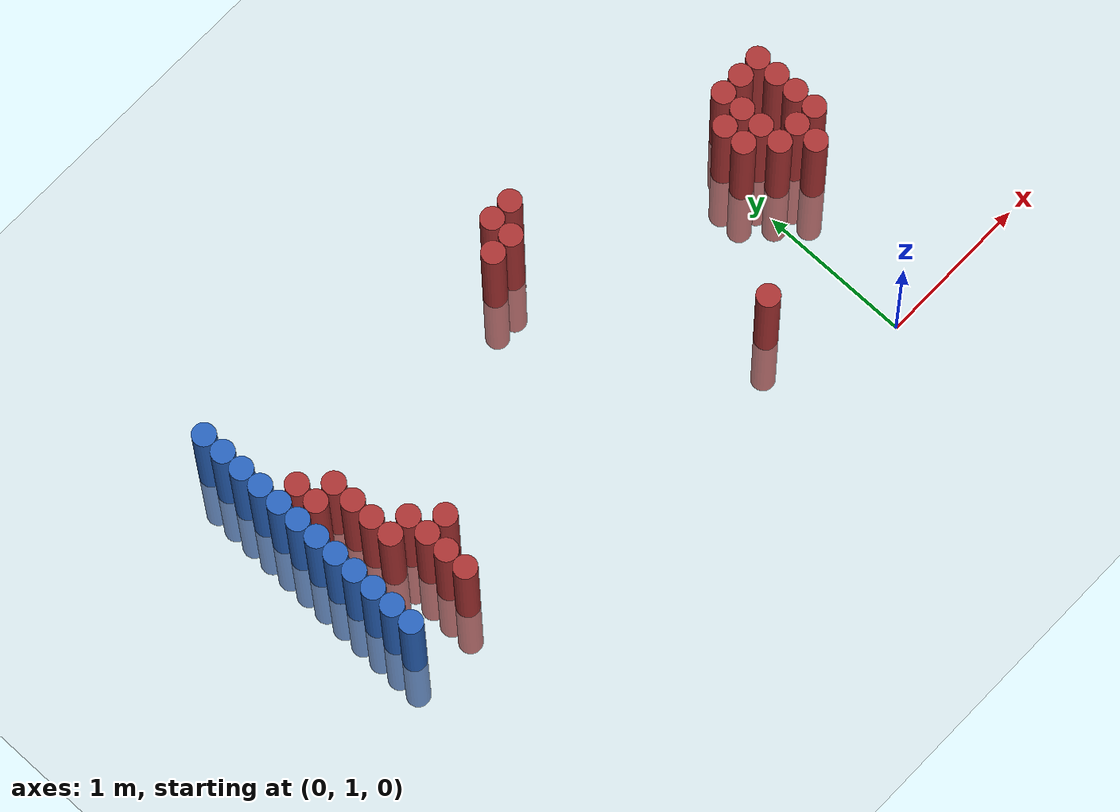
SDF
<sdf version="1.6">
 <world name="default">
  <model name="ground_plane">
   <static>1</static>
   <link name="link">
    <collision name="collision">
     <geometry><plane><normal>0 0 1</normal><size>100 100</size></plane></geometry>
     <surface><friction><ode><mu>100</mu><mu2>50</mu2></ode></friction></surface>
    </collision>
    <visual name="visual">
     <cast_shadows>0</cast_shadows>
     <geometry><plane><normal>0 0 1</normal><size>100 100</size></plane></geometry>
     <material>
      <script><uri>file://media/materials/scripts/gazebo.material</uri><name>Gazebo/Grey</name></script>
     </material>
    </visual>
   </link>
  </model>
  <model name="unit_cylinder_137">
   <static>1</static>
   <pose>-3.425000 1.675000 0.000000 0.000000 0.000000 0.000000</pose>
   <link name="link">
    <inertial>
     <mass>1</mass>
     <inertia><ixx>0.145833</ixx><ixy>0</ixy><ixz>0</ixz><iyy>0.145833</iyy><iyz>0</iyz><izz>0.125</izz></inertia>
    </inertial>
    <collision name="collision">
     <geometry><cylinder><radius>0.075000</radius><length>1.5</length></cylinder></geometry>
    </collision>
    <visual name="visual">
     <geometry><cylinder><radius>0.075000</radius><length>1.5</length></cylinder></geometry>
     <material>
      <ambient>0.152000 0.379000 0.720000 1</ambient>
      <diffuse>0.152000 0.379000 0.720000 1</diffuse>
     </material>
     <material>
      <script><name>Gazebo/Grey</name><uri>file://media/materials/scripts/gazebo.material</uri></script>
     </material>
    </visual>
   </link>
  </model>
  <model name="unit_cylinder_139">
   <static>1</static>
   <pose>-3.425000 1.825000 0.000000 0.000000 0.000000 0.000000</pose>
   <link name="link">
    <inertial>
     <mass>1</mass>
     <inertia><ixx>0.145833</ixx><ixy>0</ixy><ixz>0</ixz><iyy>0.145833</iyy><iyz>0</iyz><izz>0.125</izz></inertia>
    </inertial>
    <collision name="collision">
     <geometry><cylinder><radius>0.075000</radius><length>1.5</length></cylinder></geometry>
    </collision>
    <visual name="visual">
     <geometry><cylinder><radius>0.075000</radius><length>1.5</length></cylinder></geometry>
     <material>
      <ambient>0.152000 0.379000 0.720000 1</ambient>
      <diffuse>0.152000 0.379000 0.720000 1</diffuse>
     </material>
     <material>
      <script><name>Gazebo/Grey</name><uri>file://media/materials/scripts/gazebo.material</uri></script>
     </material>
    </visual>
   </link>
  </model>
  <model name="unit_cylinder_141">
   <static>1</static>
   <pose>-3.425000 1.975000 0.000000 0.000000 0.000000 0.000000</pose>
   <link name="link">
    <inertial>
     <mass>1</mass>
     <inertia><ixx>0.145833</ixx><ixy>0</ixy><ixz>0</ixz><iyy>0.145833</iyy><iyz>0</iyz><izz>0.125</izz></inertia>
    </inertial>
    <collision name="collision">
     <geometry><cylinder><radius>0.075000</radius><length>1.5</length></cylinder></geometry>
    </collision>
    <visual name="visual">
     <geometry><cylinder><radius>0.075000</radius><length>1.5</length></cylinder></geometry>
     <material>
      <ambient>0.152000 0.379000 0.720000 1</ambient>
      <diffuse>0.152000 0.379000 0.720000 1</diffuse>
     </material>
     <material>
      <script><name>Gazebo/Grey</name><uri>file://media/materials/scripts/gazebo.material</uri></script>
     </material>
    </visual>
   </link>
  </model>
  <model name="unit_cylinder_143">
   <static>1</static>
   <pose>-3.425000 2.125000 0.000000 0.000000 0.000000 0.000000</pose>
   <link name="link">
    <inertial>
     <mass>1</mass>
     <inertia><ixx>0.145833</ixx><ixy>0</ixy><ixz>0</ixz><iyy>0.145833</iyy><iyz>0</iyz><izz>0.125</izz></inertia>
    </inertial>
    <collision name="collision">
     <geometry><cylinder><radius>0.075000</radius><length>1.5</length></cylinder></geometry>
    </collision>
    <visual name="visual">
     <geometry><cylinder><radius>0.075000</radius><length>1.5</length></cylinder></geometry>
     <material>
      <ambient>0.152000 0.379000 0.720000 1</ambient>
      <diffuse>0.152000 0.379000 0.720000 1</diffuse>
     </material>
     <material>
      <script><name>Gazebo/Grey</name><uri>file://media/materials/scripts/gazebo.material</uri></script>
     </material>
    </visual>
   </link>
  </model>
  <model name="unit_cylinder_145">
   <static>1</static>
   <pose>-3.425000 2.275000 0.000000 0.000000 0.000000 0.000000</pose>
   <link name="link">
    <inertial>
     <mass>1</mass>
     <inertia><ixx>0.145833</ixx><ixy>0</ixy><ixz>0</ixz><iyy>0.145833</iyy><iyz>0</iyz><izz>0.125</izz></inertia>
    </inertial>
    <collision name="collision">
     <geometry><cylinder><radius>0.075000</radius><length>1.5</length></cylinder></geometry>
    </collision>
    <visual name="visual">
     <geometry><cylinder><radius>0.075000</radius><length>1.5</length></cylinder></geometry>
     <material>
      <ambient>0.152000 0.379000 0.720000 1</ambient>
      <diffuse>0.152000 0.379000 0.720000 1</diffuse>
     </material>
     <material>
      <script><name>Gazebo/Grey</name><uri>file://media/materials/scripts/gazebo.material</uri></script>
     </material>
    </visual>
   </link>
  </model>
  <model name="unit_cylinder_147">
   <static>1</static>
   <pose>-3.425000 2.425000 0.000000 0.000000 0.000000 0.000000</pose>
   <link name="link">
    <inertial>
     <mass>1</mass>
     <inertia><ixx>0.145833</ixx><ixy>0</ixy><ixz>0</ixz><iyy>0.145833</iyy><iyz>0</iyz><izz>0.125</izz></inertia>
    </inertial>
    <collision name="collision">
     <geometry><cylinder><radius>0.075000</radius><length>1.5</length></cylinder></geometry>
    </collision>
    <visual name="visual">
     <geometry><cylinder><radius>0.075000</radius><length>1.5</length></cylinder></geometry>
     <material>
      <ambient>0.152000 0.379000 0.720000 1</ambient>
      <diffuse>0.152000 0.379000 0.720000 1</diffuse>
     </material>
     <material>
      <script><name>Gazebo/Grey</name><uri>file://media/materials/scripts/gazebo.material</uri></script>
     </material>
    </visual>
   </link>
  </model>
  <model name="unit_cylinder_149">
   <static>1</static>
   <pose>-3.425000 2.575000 0.000000 0.000000 0.000000 0.000000</pose>
   <link name="link">
    <inertial>
     <mass>1</mass>
     <inertia><ixx>0.145833</ixx><ixy>0</ixy><ixz>0</ixz><iyy>0.145833</iyy><iyz>0</iyz><izz>0.125</izz></inertia>
    </inertial>
    <collision name="collision">
     <geometry><cylinder><radius>0.075000</radius><length>1.5</length></cylinder></geometry>
    </collision>
    <visual name="visual">
     <geometry><cylinder><radius>0.075000</radius><length>1.5</length></cylinder></geometry>
     <material>
      <ambient>0.152000 0.379000 0.720000 1</ambient>
      <diffuse>0.152000 0.379000 0.720000 1</diffuse>
     </material>
     <material>
      <script><name>Gazebo/Grey</name><uri>file://media/materials/scripts/gazebo.material</uri></script>
     </material>
    </visual>
   </link>
  </model>
  <model name="unit_cylinder_151">
   <static>1</static>
   <pose>-3.425000 2.725000 0.000000 0.000000 0.000000 0.000000</pose>
   <link name="link">
    <inertial>
     <mass>1</mass>
     <inertia><ixx>0.145833</ixx><ixy>0</ixy><ixz>0</ixz><iyy>0.145833</iyy><iyz>0</iyz><izz>0.125</izz></inertia>
    </inertial>
    <collision name="collision">
     <geometry><cylinder><radius>0.075000</radius><length>1.5</length></cylinder></geometry>
    </collision>
    <visual name="visual">
     <geometry><cylinder><radius>0.075000</radius><length>1.5</length></cylinder></geometry>
     <material>
      <ambient>0.152000 0.379000 0.720000 1</ambient>
      <diffuse>0.152000 0.379000 0.720000 1</diffuse>
     </material>
     <material>
      <script><name>Gazebo/Grey</name><uri>file://media/materials/scripts/gazebo.material</uri></script>
     </material>
    </visual>
   </link>
  </model>
  <model name="unit_cylinder_153">
   <static>1</static>
   <pose>-3.425000 2.875000 0.000000 0.000000 0.000000 0.000000</pose>
   <link name="link">
    <inertial>
     <mass>1</mass>
     <inertia><ixx>0.145833</ixx><ixy>0</ixy><ixz>0</ixz><iyy>0.145833</iyy><iyz>0</iyz><izz>0.125</izz></inertia>
    </inertial>
    <collision name="collision">
     <geometry><cylinder><radius>0.075000</radius><length>1.5</length></cylinder></geometry>
    </collision>
    <visual name="visual">
     <geometry><cylinder><radius>0.075000</radius><length>1.5</length></cylinder></geometry>
     <material>
      <ambient>0.152000 0.379000 0.720000 1</ambient>
      <diffuse>0.152000 0.379000 0.720000 1</diffuse>
     </material>
     <material>
      <script><name>Gazebo/Grey</name><uri>file://media/materials/scripts/gazebo.material</uri></script>
     </material>
    </visual>
   </link>
  </model>
  <model name="unit_cylinder_155">
   <static>1</static>
   <pose>-3.425000 3.025000 0.000000 0.000000 0.000000 0.000000</pose>
   <link name="link">
    <inertial>
     <mass>1</mass>
     <inertia><ixx>0.145833</ixx><ixy>0</ixy><ixz>0</ixz><iyy>0.145833</iyy><iyz>0</iyz><izz>0.125</izz></inertia>
    </inertial>
    <collision name="collision">
     <geometry><cylinder><radius>0.075000</radius><length>1.5</length></cylinder></geometry>
    </collision>
    <visual name="visual">
     <geometry><cylinder><radius>0.075000</radius><length>1.5</length></cylinder></geometry>
     <material>
      <ambient>0.152000 0.379000 0.720000 1</ambient>
      <diffuse>0.152000 0.379000 0.720000 1</diffuse>
     </material>
     <material>
      <script><name>Gazebo/Grey</name><uri>file://media/materials/scripts/gazebo.material</uri></script>
     </material>
    </visual>
   </link>
  </model>
  <model name="unit_cylinder_157">
   <static>1</static>
   <pose>-3.425000 3.175000 0.000000 0.000000 0.000000 0.000000</pose>
   <link name="link">
    <inertial>
     <mass>1</mass>
     <inertia><ixx>0.145833</ixx><ixy>0</ixy><ixz>0</ixz><iyy>0.145833</iyy><iyz>0</iyz><izz>0.125</izz></inertia>
    </inertial>
    <collision name="collision">
     <geometry><cylinder><radius>0.075000</radius><length>1.5</length></cylinder></geometry>
    </collision>
    <visual name="visual">
     <geometry><cylinder><radius>0.075000</radius><length>1.5</length></cylinder></geometry>
     <material>
      <ambient>0.152000 0.379000 0.720000 1</ambient>
      <diffuse>0.152000 0.379000 0.720000 1</diffuse>
     </material>
     <material>
      <script><name>Gazebo/Grey</name><uri>file://media/materials/scripts/gazebo.material</uri></script>
     </material>
    </visual>
   </link>
  </model>
  <model name="unit_cylinder_159">
   <static>1</static>
   <pose>-3.425000 3.325000 0.000000 0.000000 0.000000 0.000000</pose>
   <link name="link">
    <inertial>
     <mass>1</mass>
     <inertia><ixx>0.145833</ixx><ixy>0</ixy><ixz>0</ixz><iyy>0.145833</iyy><iyz>0</iyz><izz>0.125</izz></inertia>
    </inertial>
    <collision name="collision">
     <geometry><cylinder><radius>0.075000</radius><length>1.5</length></cylinder></geometry>
    </collision>
    <visual name="visual">
     <geometry><cylinder><radius>0.075000</radius><length>1.5</length></cylinder></geometry>
     <material>
      <ambient>0.152000 0.379000 0.720000 1</ambient>
      <diffuse>0.152000 0.379000 0.720000 1</diffuse>
     </material>
     <material>
      <script><name>Gazebo/Grey</name><uri>file://media/materials/scripts/gazebo.material</uri></script>
     </material>
    </visual>
   </link>
  </model>
  <model name="unit_cylinder_232">
   <static>1</static>
   <pose>-3.425000 1.675000 0.000000 0.000000 0.000000 0.000000</pose>
   <link name="link">
    <inertial>
     <mass>1</mass>
     <inertia><ixx>0.145833</ixx><ixy>0</ixy><ixz>0</ixz><iyy>0.145833</iyy><iyz>0</iyz><izz>0.125</izz></inertia>
    </inertial>
    <collision name="collision">
     <geometry><cylinder><radius>0.075000</radius><length>1.5</length></cylinder></geometry>
    </collision>
    <visual name="visual">
     <geometry><cylinder><radius>0.075000</radius><length>1.5</length></cylinder></geometry>
     <material>
      <ambient>0.152000 0.379000 0.720000 1</ambient>
      <diffuse>0.152000 0.379000 0.720000 1</diffuse>
     </material>
     <material>
      <script><name>Gazebo/Grey</name><uri>file://media/materials/scripts/gazebo.material</uri></script>
     </material>
    </visual>
   </link>
  </model>
  <model name="unit_cylinder_233">
   <static>1</static>
   <pose>-3.425000 1.825000 0.000000 0.000000 0.000000 0.000000</pose>
   <link name="link">
    <inertial>
     <mass>1</mass>
     <inertia><ixx>0.145833</ixx><ixy>0</ixy><ixz>0</ixz><iyy>0.145833</iyy><iyz>0</iyz><izz>0.125</izz></inertia>
    </inertial>
    <collision name="collision">
     <geometry><cylinder><radius>0.075000</radius><length>1.5</length></cylinder></geometry>
    </collision>
    <visual name="visual">
     <geometry><cylinder><radius>0.075000</radius><length>1.5</length></cylinder></geometry>
     <material>
      <ambient>0.152000 0.379000 0.720000 1</ambient>
      <diffuse>0.152000 0.379000 0.720000 1</diffuse>
     </material>
     <material>
      <script><name>Gazebo/Grey</name><uri>file://media/materials/scripts/gazebo.material</uri></script>
     </material>
    </visual>
   </link>
  </model>
  <model name="unit_cylinder_234">
   <static>1</static>
   <pose>-3.425000 1.975000 0.000000 0.000000 0.000000 0.000000</pose>
   <link name="link">
    <inertial>
     <mass>1</mass>
     <inertia><ixx>0.145833</ixx><ixy>0</ixy><ixz>0</ixz><iyy>0.145833</iyy><iyz>0</iyz><izz>0.125</izz></inertia>
    </inertial>
    <collision name="collision">
     <geometry><cylinder><radius>0.075000</radius><length>1.5</length></cylinder></geometry>
    </collision>
    <visual name="visual">
     <geometry><cylinder><radius>0.075000</radius><length>1.5</length></cylinder></geometry>
     <material>
      <ambient>0.152000 0.379000 0.720000 1</ambient>
      <diffuse>0.152000 0.379000 0.720000 1</diffuse>
     </material>
     <material>
      <script><name>Gazebo/Grey</name><uri>file://media/materials/scripts/gazebo.material</uri></script>
     </material>
    </visual>
   </link>
  </model>
  <model name="unit_cylinder_235">
   <static>1</static>
   <pose>-3.425000 2.125000 0.000000 0.000000 0.000000 0.000000</pose>
   <link name="link">
    <inertial>
     <mass>1</mass>
     <inertia><ixx>0.145833</ixx><ixy>0</ixy><ixz>0</ixz><iyy>0.145833</iyy><iyz>0</iyz><izz>0.125</izz></inertia>
    </inertial>
    <collision name="collision">
     <geometry><cylinder><radius>0.075000</radius><length>1.5</length></cylinder></geometry>
    </collision>
    <visual name="visual">
     <geometry><cylinder><radius>0.075000</radius><length>1.5</length></cylinder></geometry>
     <material>
      <ambient>0.152000 0.379000 0.720000 1</ambient>
      <diffuse>0.152000 0.379000 0.720000 1</diffuse>
     </material>
     <material>
      <script><name>Gazebo/Grey</name><uri>file://media/materials/scripts/gazebo.material</uri></script>
     </material>
    </visual>
   </link>
  </model>
  <model name="unit_cylinder_236">
   <static>1</static>
   <pose>-3.425000 2.275000 0.000000 0.000000 0.000000 0.000000</pose>
   <link name="link">
    <inertial>
     <mass>1</mass>
     <inertia><ixx>0.145833</ixx><ixy>0</ixy><ixz>0</ixz><iyy>0.145833</iyy><iyz>0</iyz><izz>0.125</izz></inertia>
    </inertial>
    <collision name="collision">
     <geometry><cylinder><radius>0.075000</radius><length>1.5</length></cylinder></geometry>
    </collision>
    <visual name="visual">
     <geometry><cylinder><radius>0.075000</radius><length>1.5</length></cylinder></geometry>
     <material>
      <ambient>0.152000 0.379000 0.720000 1</ambient>
      <diffuse>0.152000 0.379000 0.720000 1</diffuse>
     </material>
     <material>
      <script><name>Gazebo/Grey</name><uri>file://media/materials/scripts/gazebo.material</uri></script>
     </material>
    </visual>
   </link>
  </model>
  <model name="unit_cylinder_237">
   <static>1</static>
   <pose>-3.425000 2.425000 0.000000 0.000000 0.000000 0.000000</pose>
   <link name="link">
    <inertial>
     <mass>1</mass>
     <inertia><ixx>0.145833</ixx><ixy>0</ixy><ixz>0</ixz><iyy>0.145833</iyy><iyz>0</iyz><izz>0.125</izz></inertia>
    </inertial>
    <collision name="collision">
     <geometry><cylinder><radius>0.075000</radius><length>1.5</length></cylinder></geometry>
    </collision>
    <visual name="visual">
     <geometry><cylinder><radius>0.075000</radius><length>1.5</length></cylinder></geometry>
     <material>
      <ambient>0.152000 0.379000 0.720000 1</ambient>
      <diffuse>0.152000 0.379000 0.720000 1</diffuse>
     </material>
     <material>
      <script><name>Gazebo/Grey</name><uri>file://media/materials/scripts/gazebo.material</uri></script>
     </material>
    </visual>
   </link>
  </model>
  <model name="unit_cylinder_238">
   <static>1</static>
   <pose>-3.425000 2.575000 0.000000 0.000000 0.000000 0.000000</pose>
   <link name="link">
    <inertial>
     <mass>1</mass>
     <inertia><ixx>0.145833</ixx><ixy>0</ixy><ixz>0</ixz><iyy>0.145833</iyy><iyz>0</iyz><izz>0.125</izz></inertia>
    </inertial>
    <collision name="collision">
     <geometry><cylinder><radius>0.075000</radius><length>1.5</length></cylinder></geometry>
    </collision>
    <visual name="visual">
     <geometry><cylinder><radius>0.075000</radius><length>1.5</length></cylinder></geometry>
     <material>
      <ambient>0.152000 0.379000 0.720000 1</ambient>
      <diffuse>0.152000 0.379000 0.720000 1</diffuse>
     </material>
     <material>
      <script><name>Gazebo/Grey</name><uri>file://media/materials/scripts/gazebo.material</uri></script>
     </material>
    </visual>
   </link>
  </model>
  <model name="unit_cylinder_239">
   <static>1</static>
   <pose>-3.425000 2.725000 0.000000 0.000000 0.000000 0.000000</pose>
   <link name="link">
    <inertial>
     <mass>1</mass>
     <inertia><ixx>0.145833</ixx><ixy>0</ixy><ixz>0</ixz><iyy>0.145833</iyy><iyz>0</iyz><izz>0.125</izz></inertia>
    </inertial>
    <collision name="collision">
     <geometry><cylinder><radius>0.075000</radius><length>1.5</length></cylinder></geometry>
    </collision>
    <visual name="visual">
     <geometry><cylinder><radius>0.075000</radius><length>1.5</length></cylinder></geometry>
     <material>
      <ambient>0.152000 0.379000 0.720000 1</ambient>
      <diffuse>0.152000 0.379000 0.720000 1</diffuse>
     </material>
     <material>
      <script><name>Gazebo/Grey</name><uri>file://media/materials/scripts/gazebo.material</uri></script>
     </material>
    </visual>
   </link>
  </model>
  <model name="unit_cylinder_240">
   <static>1</static>
   <pose>-3.425000 2.875000 0.000000 0.000000 0.000000 0.000000</pose>
   <link name="link">
    <inertial>
     <mass>1</mass>
     <inertia><ixx>0.145833</ixx><ixy>0</ixy><ixz>0</ixz><iyy>0.145833</iyy><iyz>0</iyz><izz>0.125</izz></inertia>
    </inertial>
    <collision name="collision">
     <geometry><cylinder><radius>0.075000</radius><length>1.5</length></cylinder></geometry>
    </collision>
    <visual name="visual">
     <geometry><cylinder><radius>0.075000</radius><length>1.5</length></cylinder></geometry>
     <material>
      <ambient>0.152000 0.379000 0.720000 1</ambient>
      <diffuse>0.152000 0.379000 0.720000 1</diffuse>
     </material>
     <material>
      <script><name>Gazebo/Grey</name><uri>file://media/materials/scripts/gazebo.material</uri></script>
     </material>
    </visual>
   </link>
  </model>
  <model name="unit_cylinder_241">
   <static>1</static>
   <pose>-3.425000 3.025000 0.000000 0.000000 0.000000 0.000000</pose>
   <link name="link">
    <inertial>
     <mass>1</mass>
     <inertia><ixx>0.145833</ixx><ixy>0</ixy><ixz>0</ixz><iyy>0.145833</iyy><iyz>0</iyz><izz>0.125</izz></inertia>
    </inertial>
    <collision name="collision">
     <geometry><cylinder><radius>0.075000</radius><length>1.5</length></cylinder></geometry>
    </collision>
    <visual name="visual">
     <geometry><cylinder><radius>0.075000</radius><length>1.5</length></cylinder></geometry>
     <material>
      <ambient>0.152000 0.379000 0.720000 1</ambient>
      <diffuse>0.152000 0.379000 0.720000 1</diffuse>
     </material>
     <material>
      <script><name>Gazebo/Grey</name><uri>file://media/materials/scripts/gazebo.material</uri></script>
     </material>
    </visual>
   </link>
  </model>
  <model name="unit_cylinder_242">
   <static>1</static>
   <pose>-3.425000 3.175000 0.000000 0.000000 0.000000 0.000000</pose>
   <link name="link">
    <inertial>
     <mass>1</mass>
     <inertia><ixx>0.145833</ixx><ixy>0</ixy><ixz>0</ixz><iyy>0.145833</iyy><iyz>0</iyz><izz>0.125</izz></inertia>
    </inertial>
    <collision name="collision">
     <geometry><cylinder><radius>0.075000</radius><length>1.5</length></cylinder></geometry>
    </collision>
    <visual name="visual">
     <geometry><cylinder><radius>0.075000</radius><length>1.5</length></cylinder></geometry>
     <material>
      <ambient>0.152000 0.379000 0.720000 1</ambient>
      <diffuse>0.152000 0.379000 0.720000 1</diffuse>
     </material>
     <material>
      <script><name>Gazebo/Grey</name><uri>file://media/materials/scripts/gazebo.material</uri></script>
     </material>
    </visual>
   </link>
  </model>
  <model name="unit_cylinder_243">
   <static>1</static>
   <pose>-3.425000 3.325000 0.000000 0.000000 0.000000 0.000000</pose>
   <link name="link">
    <inertial>
     <mass>1</mass>
     <inertia><ixx>0.145833</ixx><ixy>0</ixy><ixz>0</ixz><iyy>0.145833</iyy><iyz>0</iyz><izz>0.125</izz></inertia>
    </inertial>
    <collision name="collision">
     <geometry><cylinder><radius>0.075000</radius><length>1.5</length></cylinder></geometry>
    </collision>
    <visual name="visual">
     <geometry><cylinder><radius>0.075000</radius><length>1.5</length></cylinder></geometry>
     <material>
      <ambient>0.152000 0.379000 0.720000 1</ambient>
      <diffuse>0.152000 0.379000 0.720000 1</diffuse>
     </material>
     <material>
      <script><name>Gazebo/Grey</name><uri>file://media/materials/scripts/gazebo.material</uri></script>
     </material>
    </visual>
   </link>
  </model>
  <model name="unit_cylinder_265">
   <static>1</static>
   <pose>-3.275000 2.575000 0.000000 0.000000 0.000000 0.000000</pose>
   <link name="link">
    <inertial>
     <mass>1</mass>
     <inertia><ixx>0.145833</ixx><ixy>0</ixy><ixz>0</ixz><iyy>0.145833</iyy><iyz>0</iyz><izz>0.125</izz></inertia>
    </inertial>
    <collision name="collision">
     <geometry><cylinder><radius>0.075000</radius><length>1.5</length></cylinder></geometry>
    </collision>
    <visual name="visual">
     <geometry><cylinder><radius>0.075000</radius><length>1.5</length></cylinder></geometry>
     <material>
      <ambient>0.648000 0.192000 0.192000 1</ambient>
      <diffuse>0.648000 0.192000 0.192000 1</diffuse>
     </material>
     <material>
      <script><name>Gazebo/Grey</name><uri>file://media/materials/scripts/gazebo.material</uri></script>
     </material>
    </visual>
   </link>
  </model>
  <model name="unit_cylinder_266">
   <static>1</static>
   <pose>-3.275000 2.725000 0.000000 0.000000 0.000000 0.000000</pose>
   <link name="link">
    <inertial>
     <mass>1</mass>
     <inertia><ixx>0.145833</ixx><ixy>0</ixy><ixz>0</ixz><iyy>0.145833</iyy><iyz>0</iyz><izz>0.125</izz></inertia>
    </inertial>
    <collision name="collision">
     <geometry><cylinder><radius>0.075000</radius><length>1.5</length></cylinder></geometry>
    </collision>
    <visual name="visual">
     <geometry><cylinder><radius>0.075000</radius><length>1.5</length></cylinder></geometry>
     <material>
      <ambient>0.648000 0.192000 0.192000 1</ambient>
      <diffuse>0.648000 0.192000 0.192000 1</diffuse>
     </material>
     <material>
      <script><name>Gazebo/Grey</name><uri>file://media/materials/scripts/gazebo.material</uri></script>
     </material>
    </visual>
   </link>
  </model>
  <model name="unit_cylinder_274">
   <static>1</static>
   <pose>-3.125000 2.125000 0.000000 0.000000 0.000000 0.000000</pose>
   <link name="link">
    <inertial>
     <mass>1</mass>
     <inertia><ixx>0.145833</ixx><ixy>0</ixy><ixz>0</ixz><iyy>0.145833</iyy><iyz>0</iyz><izz>0.125</izz></inertia>
    </inertial>
    <collision name="collision">
     <geometry><cylinder><radius>0.075000</radius><length>1.5</length></cylinder></geometry>
    </collision>
    <visual name="visual">
     <geometry><cylinder><radius>0.075000</radius><length>1.5</length></cylinder></geometry>
     <material>
      <ambient>0.648000 0.192000 0.192000 1</ambient>
      <diffuse>0.648000 0.192000 0.192000 1</diffuse>
     </material>
     <material>
      <script><name>Gazebo/Grey</name><uri>file://media/materials/scripts/gazebo.material</uri></script>
     </material>
    </visual>
   </link>
  </model>
  <model name="unit_cylinder_275">
   <static>1</static>
   <pose>-3.125000 2.275000 0.000000 0.000000 0.000000 0.000000</pose>
   <link name="link">
    <inertial>
     <mass>1</mass>
     <inertia><ixx>0.145833</ixx><ixy>0</ixy><ixz>0</ixz><iyy>0.145833</iyy><iyz>0</iyz><izz>0.125</izz></inertia>
    </inertial>
    <collision name="collision">
     <geometry><cylinder><radius>0.075000</radius><length>1.5</length></cylinder></geometry>
    </collision>
    <visual name="visual">
     <geometry><cylinder><radius>0.075000</radius><length>1.5</length></cylinder></geometry>
     <material>
      <ambient>0.648000 0.192000 0.192000 1</ambient>
      <diffuse>0.648000 0.192000 0.192000 1</diffuse>
     </material>
     <material>
      <script><name>Gazebo/Grey</name><uri>file://media/materials/scripts/gazebo.material</uri></script>
     </material>
    </visual>
   </link>
  </model>
  <model name="unit_cylinder_276">
   <static>1</static>
   <pose>-3.125000 2.425000 0.000000 0.000000 0.000000 0.000000</pose>
   <link name="link">
    <inertial>
     <mass>1</mass>
     <inertia><ixx>0.145833</ixx><ixy>0</ixy><ixz>0</ixz><iyy>0.145833</iyy><iyz>0</iyz><izz>0.125</izz></inertia>
    </inertial>
    <collision name="collision">
     <geometry><cylinder><radius>0.075000</radius><length>1.5</length></cylinder></geometry>
    </collision>
    <visual name="visual">
     <geometry><cylinder><radius>0.075000</radius><length>1.5</length></cylinder></geometry>
     <material>
      <ambient>0.648000 0.192000 0.192000 1</ambient>
      <diffuse>0.648000 0.192000 0.192000 1</diffuse>
     </material>
     <material>
      <script><name>Gazebo/Grey</name><uri>file://media/materials/scripts/gazebo.material</uri></script>
     </material>
    </visual>
   </link>
  </model>
  <model name="unit_cylinder_277">
   <static>1</static>
   <pose>-3.125000 2.575000 0.000000 0.000000 0.000000 0.000000</pose>
   <link name="link">
    <inertial>
     <mass>1</mass>
     <inertia><ixx>0.145833</ixx><ixy>0</ixy><ixz>0</ixz><iyy>0.145833</iyy><iyz>0</iyz><izz>0.125</izz></inertia>
    </inertial>
    <collision name="collision">
     <geometry><cylinder><radius>0.075000</radius><length>1.5</length></cylinder></geometry>
    </collision>
    <visual name="visual">
     <geometry><cylinder><radius>0.075000</radius><length>1.5</length></cylinder></geometry>
     <material>
      <ambient>0.648000 0.192000 0.192000 1</ambient>
      <diffuse>0.648000 0.192000 0.192000 1</diffuse>
     </material>
     <material>
      <script><name>Gazebo/Grey</name><uri>file://media/materials/scripts/gazebo.material</uri></script>
     </material>
    </visual>
   </link>
  </model>
  <model name="unit_cylinder_284">
   <static>1</static>
   <pose>-2.975000 1.675000 0.000000 0.000000 0.000000 0.000000</pose>
   <link name="link">
    <inertial>
     <mass>1</mass>
     <inertia><ixx>0.145833</ixx><ixy>0</ixy><ixz>0</ixz><iyy>0.145833</iyy><iyz>0</iyz><izz>0.125</izz></inertia>
    </inertial>
    <collision name="collision">
     <geometry><cylinder><radius>0.075000</radius><length>1.5</length></cylinder></geometry>
    </collision>
    <visual name="visual">
     <geometry><cylinder><radius>0.075000</radius><length>1.5</length></cylinder></geometry>
     <material>
      <ambient>0.648000 0.192000 0.192000 1</ambient>
      <diffuse>0.648000 0.192000 0.192000 1</diffuse>
     </material>
     <material>
      <script><name>Gazebo/Grey</name><uri>file://media/materials/scripts/gazebo.material</uri></script>
     </material>
    </visual>
   </link>
  </model>
  <model name="unit_cylinder_285">
   <static>1</static>
   <pose>-2.975000 1.825000 0.000000 0.000000 0.000000 0.000000</pose>
   <link name="link">
    <inertial>
     <mass>1</mass>
     <inertia><ixx>0.145833</ixx><ixy>0</ixy><ixz>0</ixz><iyy>0.145833</iyy><iyz>0</iyz><izz>0.125</izz></inertia>
    </inertial>
    <collision name="collision">
     <geometry><cylinder><radius>0.075000</radius><length>1.5</length></cylinder></geometry>
    </collision>
    <visual name="visual">
     <geometry><cylinder><radius>0.075000</radius><length>1.5</length></cylinder></geometry>
     <material>
      <ambient>0.648000 0.192000 0.192000 1</ambient>
      <diffuse>0.648000 0.192000 0.192000 1</diffuse>
     </material>
     <material>
      <script><name>Gazebo/Grey</name><uri>file://media/materials/scripts/gazebo.material</uri></script>
     </material>
    </visual>
   </link>
  </model>
  <model name="unit_cylinder_286">
   <static>1</static>
   <pose>-2.975000 1.975000 0.000000 0.000000 0.000000 0.000000</pose>
   <link name="link">
    <inertial>
     <mass>1</mass>
     <inertia><ixx>0.145833</ixx><ixy>0</ixy><ixz>0</ixz><iyy>0.145833</iyy><iyz>0</iyz><izz>0.125</izz></inertia>
    </inertial>
    <collision name="collision">
     <geometry><cylinder><radius>0.075000</radius><length>1.5</length></cylinder></geometry>
    </collision>
    <visual name="visual">
     <geometry><cylinder><radius>0.075000</radius><length>1.5</length></cylinder></geometry>
     <material>
      <ambient>0.648000 0.192000 0.192000 1</ambient>
      <diffuse>0.648000 0.192000 0.192000 1</diffuse>
     </material>
     <material>
      <script><name>Gazebo/Grey</name><uri>file://media/materials/scripts/gazebo.material</uri></script>
     </material>
    </visual>
   </link>
  </model>
  <model name="unit_cylinder_287">
   <static>1</static>
   <pose>-2.975000 2.125000 0.000000 0.000000 0.000000 0.000000</pose>
   <link name="link">
    <inertial>
     <mass>1</mass>
     <inertia><ixx>0.145833</ixx><ixy>0</ixy><ixz>0</ixz><iyy>0.145833</iyy><iyz>0</iyz><izz>0.125</izz></inertia>
    </inertial>
    <collision name="collision">
     <geometry><cylinder><radius>0.075000</radius><length>1.5</length></cylinder></geometry>
    </collision>
    <visual name="visual">
     <geometry><cylinder><radius>0.075000</radius><length>1.5</length></cylinder></geometry>
     <material>
      <ambient>0.648000 0.192000 0.192000 1</ambient>
      <diffuse>0.648000 0.192000 0.192000 1</diffuse>
     </material>
     <material>
      <script><name>Gazebo/Grey</name><uri>file://media/materials/scripts/gazebo.material</uri></script>
     </material>
    </visual>
   </link>
  </model>
  <model name="unit_cylinder_292">
   <static>1</static>
   <pose>-2.825000 1.975000 0.000000 0.000000 0.000000 0.000000</pose>
   <link name="link">
    <inertial>
     <mass>1</mass>
     <inertia><ixx>0.145833</ixx><ixy>0</ixy><ixz>0</ixz><iyy>0.145833</iyy><iyz>0</iyz><izz>0.125</izz></inertia>
    </inertial>
    <collision name="collision">
     <geometry><cylinder><radius>0.075000</radius><length>1.5</length></cylinder></geometry>
    </collision>
    <visual name="visual">
     <geometry><cylinder><radius>0.075000</radius><length>1.5</length></cylinder></geometry>
     <material>
      <ambient>0.648000 0.192000 0.192000 1</ambient>
      <diffuse>0.648000 0.192000 0.192000 1</diffuse>
     </material>
     <material>
      <script><name>Gazebo/Grey</name><uri>file://media/materials/scripts/gazebo.material</uri></script>
     </material>
    </visual>
   </link>
  </model>
  <model name="unit_cylinder_329">
   <static>1</static>
   <pose>-1.475000 2.875000 0.000000 0.000000 0.000000 0.000000</pose>
   <link name="link">
    <inertial>
     <mass>1</mass>
     <inertia><ixx>0.145833</ixx><ixy>0</ixy><ixz>0</ixz><iyy>0.145833</iyy><iyz>0</iyz><izz>0.125</izz></inertia>
    </inertial>
    <collision name="collision">
     <geometry><cylinder><radius>0.075000</radius><length>1.5</length></cylinder></geometry>
    </collision>
    <visual name="visual">
     <geometry><cylinder><radius>0.075000</radius><length>1.5</length></cylinder></geometry>
     <material>
      <ambient>0.648000 0.192000 0.192000 1</ambient>
      <diffuse>0.648000 0.192000 0.192000 1</diffuse>
     </material>
     <material>
      <script><name>Gazebo/Grey</name><uri>file://media/materials/scripts/gazebo.material</uri></script>
     </material>
    </visual>
   </link>
  </model>
  <model name="unit_cylinder_333">
   <static>1</static>
   <pose>-1.325000 2.875000 0.000000 0.000000 0.000000 0.000000</pose>
   <link name="link">
    <inertial>
     <mass>1</mass>
     <inertia><ixx>0.145833</ixx><ixy>0</ixy><ixz>0</ixz><iyy>0.145833</iyy><iyz>0</iyz><izz>0.125</izz></inertia>
    </inertial>
    <collision name="collision">
     <geometry><cylinder><radius>0.075000</radius><length>1.5</length></cylinder></geometry>
    </collision>
    <visual name="visual">
     <geometry><cylinder><radius>0.075000</radius><length>1.5</length></cylinder></geometry>
     <material>
      <ambient>0.648000 0.192000 0.192000 1</ambient>
      <diffuse>0.648000 0.192000 0.192000 1</diffuse>
     </material>
     <material>
      <script><name>Gazebo/Grey</name><uri>file://media/materials/scripts/gazebo.material</uri></script>
     </material>
    </visual>
   </link>
  </model>
  <model name="unit_cylinder_334">
   <static>1</static>
   <pose>-1.325000 3.025000 0.000000 0.000000 0.000000 0.000000</pose>
   <link name="link">
    <inertial>
     <mass>1</mass>
     <inertia><ixx>0.145833</ixx><ixy>0</ixy><ixz>0</ixz><iyy>0.145833</iyy><iyz>0</iyz><izz>0.125</izz></inertia>
    </inertial>
    <collision name="collision">
     <geometry><cylinder><radius>0.075000</radius><length>1.5</length></cylinder></geometry>
    </collision>
    <visual name="visual">
     <geometry><cylinder><radius>0.075000</radius><length>1.5</length></cylinder></geometry>
     <material>
      <ambient>0.648000 0.192000 0.192000 1</ambient>
      <diffuse>0.648000 0.192000 0.192000 1</diffuse>
     </material>
     <material>
      <script><name>Gazebo/Grey</name><uri>file://media/materials/scripts/gazebo.material</uri></script>
     </material>
    </visual>
   </link>
  </model>
  <model name="unit_cylinder_337">
   <static>1</static>
   <pose>-1.175000 3.025000 0.000000 0.000000 0.000000 0.000000</pose>
   <link name="link">
    <inertial>
     <mass>1</mass>
     <inertia><ixx>0.145833</ixx><ixy>0</ixy><ixz>0</ixz><iyy>0.145833</iyy><iyz>0</iyz><izz>0.125</izz></inertia>
    </inertial>
    <collision name="collision">
     <geometry><cylinder><radius>0.075000</radius><length>1.5</length></cylinder></geometry>
    </collision>
    <visual name="visual">
     <geometry><cylinder><radius>0.075000</radius><length>1.5</length></cylinder></geometry>
     <material>
      <ambient>0.648000 0.192000 0.192000 1</ambient>
      <diffuse>0.648000 0.192000 0.192000 1</diffuse>
     </material>
     <material>
      <script><name>Gazebo/Grey</name><uri>file://media/materials/scripts/gazebo.material</uri></script>
     </material>
    </visual>
   </link>
  </model>
  <model name="unit_cylinder_365">
   <static>1</static>
   <pose>-0.575000 1.525000 0.000000 0.000000 0.000000 0.000000</pose>
   <link name="link">
    <inertial>
     <mass>1</mass>
     <inertia><ixx>0.145833</ixx><ixy>0</ixy><ixz>0</ixz><iyy>0.145833</iyy><iyz>0</iyz><izz>0.125</izz></inertia>
    </inertial>
    <collision name="collision">
     <geometry><cylinder><radius>0.075000</radius><length>1.5</length></cylinder></geometry>
    </collision>
    <visual name="visual">
     <geometry><cylinder><radius>0.075000</radius><length>1.5</length></cylinder></geometry>
     <material>
      <ambient>0.648000 0.192000 0.192000 1</ambient>
      <diffuse>0.648000 0.192000 0.192000 1</diffuse>
     </material>
     <material>
      <script><name>Gazebo/Grey</name><uri>file://media/materials/scripts/gazebo.material</uri></script>
     </material>
    </visual>
   </link>
  </model>
  <model name="unit_cylinder_382">
   <static>1</static>
   <pose>0.025000 2.275000 0.000000 0.000000 0.000000 0.000000</pose>
   <link name="link">
    <inertial>
     <mass>1</mass>
     <inertia><ixx>0.145833</ixx><ixy>0</ixy><ixz>0</ixz><iyy>0.145833</iyy><iyz>0</iyz><izz>0.125</izz></inertia>
    </inertial>
    <collision name="collision">
     <geometry><cylinder><radius>0.075000</radius><length>1.5</length></cylinder></geometry>
    </collision>
    <visual name="visual">
     <geometry><cylinder><radius>0.075000</radius><length>1.5</length></cylinder></geometry>
     <material>
      <ambient>0.648000 0.192000 0.192000 1</ambient>
      <diffuse>0.648000 0.192000 0.192000 1</diffuse>
     </material>
     <material>
      <script><name>Gazebo/Grey</name><uri>file://media/materials/scripts/gazebo.material</uri></script>
     </material>
    </visual>
   </link>
  </model>
  <model name="unit_cylinder_383">
   <static>1</static>
   <pose>0.025000 2.425000 0.000000 0.000000 0.000000 0.000000</pose>
   <link name="link">
    <inertial>
     <mass>1</mass>
     <inertia><ixx>0.145833</ixx><ixy>0</ixy><ixz>0</ixz><iyy>0.145833</iyy><iyz>0</iyz><izz>0.125</izz></inertia>
    </inertial>
    <collision name="collision">
     <geometry><cylinder><radius>0.075000</radius><length>1.5</length></cylinder></geometry>
    </collision>
    <visual name="visual">
     <geometry><cylinder><radius>0.075000</radius><length>1.5</length></cylinder></geometry>
     <material>
      <ambient>0.648000 0.192000 0.192000 1</ambient>
      <diffuse>0.648000 0.192000 0.192000 1</diffuse>
     </material>
     <material>
      <script><name>Gazebo/Grey</name><uri>file://media/materials/scripts/gazebo.material</uri></script>
     </material>
    </visual>
   </link>
  </model>
  <model name="unit_cylinder_385">
   <static>1</static>
   <pose>0.175000 2.125000 0.000000 0.000000 0.000000 0.000000</pose>
   <link name="link">
    <inertial>
     <mass>1</mass>
     <inertia><ixx>0.145833</ixx><ixy>0</ixy><ixz>0</ixz><iyy>0.145833</iyy><iyz>0</iyz><izz>0.125</izz></inertia>
    </inertial>
    <collision name="collision">
     <geometry><cylinder><radius>0.075000</radius><length>1.5</length></cylinder></geometry>
    </collision>
    <visual name="visual">
     <geometry><cylinder><radius>0.075000</radius><length>1.5</length></cylinder></geometry>
     <material>
      <ambient>0.648000 0.192000 0.192000 1</ambient>
      <diffuse>0.648000 0.192000 0.192000 1</diffuse>
     </material>
     <material>
      <script><name>Gazebo/Grey</name><uri>file://media/materials/scripts/gazebo.material</uri></script>
     </material>
    </visual>
   </link>
  </model>
  <model name="unit_cylinder_386">
   <static>1</static>
   <pose>0.175000 2.275000 0.000000 0.000000 0.000000 0.000000</pose>
   <link name="link">
    <inertial>
     <mass>1</mass>
     <inertia><ixx>0.145833</ixx><ixy>0</ixy><ixz>0</ixz><iyy>0.145833</iyy><iyz>0</iyz><izz>0.125</izz></inertia>
    </inertial>
    <collision name="collision">
     <geometry><cylinder><radius>0.075000</radius><length>1.5</length></cylinder></geometry>
    </collision>
    <visual name="visual">
     <geometry><cylinder><radius>0.075000</radius><length>1.5</length></cylinder></geometry>
     <material>
      <ambient>0.648000 0.192000 0.192000 1</ambient>
      <diffuse>0.648000 0.192000 0.192000 1</diffuse>
     </material>
     <material>
      <script><name>Gazebo/Grey</name><uri>file://media/materials/scripts/gazebo.material</uri></script>
     </material>
    </visual>
   </link>
  </model>
  <model name="unit_cylinder_387">
   <static>1</static>
   <pose>0.175000 2.425000 0.000000 0.000000 0.000000 0.000000</pose>
   <link name="link">
    <inertial>
     <mass>1</mass>
     <inertia><ixx>0.145833</ixx><ixy>0</ixy><ixz>0</ixz><iyy>0.145833</iyy><iyz>0</iyz><izz>0.125</izz></inertia>
    </inertial>
    <collision name="collision">
     <geometry><cylinder><radius>0.075000</radius><length>1.5</length></cylinder></geometry>
    </collision>
    <visual name="visual">
     <geometry><cylinder><radius>0.075000</radius><length>1.5</length></cylinder></geometry>
     <material>
      <ambient>0.648000 0.192000 0.192000 1</ambient>
      <diffuse>0.648000 0.192000 0.192000 1</diffuse>
     </material>
     <material>
      <script><name>Gazebo/Grey</name><uri>file://media/materials/scripts/gazebo.material</uri></script>
     </material>
    </visual>
   </link>
  </model>
  <model name="unit_cylinder_388">
   <static>1</static>
   <pose>0.175000 2.575000 0.000000 0.000000 0.000000 0.000000</pose>
   <link name="link">
    <inertial>
     <mass>1</mass>
     <inertia><ixx>0.145833</ixx><ixy>0</ixy><ixz>0</ixz><iyy>0.145833</iyy><iyz>0</iyz><izz>0.125</izz></inertia>
    </inertial>
    <collision name="collision">
     <geometry><cylinder><radius>0.075000</radius><length>1.5</length></cylinder></geometry>
    </collision>
    <visual name="visual">
     <geometry><cylinder><radius>0.075000</radius><length>1.5</length></cylinder></geometry>
     <material>
      <ambient>0.648000 0.192000 0.192000 1</ambient>
      <diffuse>0.648000 0.192000 0.192000 1</diffuse>
     </material>
     <material>
      <script><name>Gazebo/Grey</name><uri>file://media/materials/scripts/gazebo.material</uri></script>
     </material>
    </visual>
   </link>
  </model>
  <model name="unit_cylinder_392">
   <static>1</static>
   <pose>0.325000 1.975000 0.000000 0.000000 0.000000 0.000000</pose>
   <link name="link">
    <inertial>
     <mass>1</mass>
     <inertia><ixx>0.145833</ixx><ixy>0</ixy><ixz>0</ixz><iyy>0.145833</iyy><iyz>0</iyz><izz>0.125</izz></inertia>
    </inertial>
    <collision name="collision">
     <geometry><cylinder><radius>0.075000</radius><length>1.5</length></cylinder></geometry>
    </collision>
    <visual name="visual">
     <geometry><cylinder><radius>0.075000</radius><length>1.5</length></cylinder></geometry>
     <material>
      <ambient>0.648000 0.192000 0.192000 1</ambient>
      <diffuse>0.648000 0.192000 0.192000 1</diffuse>
     </material>
     <material>
      <script><name>Gazebo/Grey</name><uri>file://media/materials/scripts/gazebo.material</uri></script>
     </material>
    </visual>
   </link>
  </model>
  <model name="unit_cylinder_393">
   <static>1</static>
   <pose>0.325000 2.125000 0.000000 0.000000 0.000000 0.000000</pose>
   <link name="link">
    <inertial>
     <mass>1</mass>
     <inertia><ixx>0.145833</ixx><ixy>0</ixy><ixz>0</ixz><iyy>0.145833</iyy><iyz>0</iyz><izz>0.125</izz></inertia>
    </inertial>
    <collision name="collision">
     <geometry><cylinder><radius>0.075000</radius><length>1.5</length></cylinder></geometry>
    </collision>
    <visual name="visual">
     <geometry><cylinder><radius>0.075000</radius><length>1.5</length></cylinder></geometry>
     <material>
      <ambient>0.648000 0.192000 0.192000 1</ambient>
      <diffuse>0.648000 0.192000 0.192000 1</diffuse>
     </material>
     <material>
      <script><name>Gazebo/Grey</name><uri>file://media/materials/scripts/gazebo.material</uri></script>
     </material>
    </visual>
   </link>
  </model>
  <model name="unit_cylinder_394">
   <static>1</static>
   <pose>0.325000 2.575000 0.000000 0.000000 0.000000 0.000000</pose>
   <link name="link">
    <inertial>
     <mass>1</mass>
     <inertia><ixx>0.145833</ixx><ixy>0</ixy><ixz>0</ixz><iyy>0.145833</iyy><iyz>0</iyz><izz>0.125</izz></inertia>
    </inertial>
    <collision name="collision">
     <geometry><cylinder><radius>0.075000</radius><length>1.5</length></cylinder></geometry>
    </collision>
    <visual name="visual">
     <geometry><cylinder><radius>0.075000</radius><length>1.5</length></cylinder></geometry>
     <material>
      <ambient>0.648000 0.192000 0.192000 1</ambient>
      <diffuse>0.648000 0.192000 0.192000 1</diffuse>
     </material>
     <material>
      <script><name>Gazebo/Grey</name><uri>file://media/materials/scripts/gazebo.material</uri></script>
     </material>
    </visual>
   </link>
  </model>
  <model name="unit_cylinder_399">
   <static>1</static>
   <pose>0.475000 2.125000 0.000000 0.000000 0.000000 0.000000</pose>
   <link name="link">
    <inertial>
     <mass>1</mass>
     <inertia><ixx>0.145833</ixx><ixy>0</ixy><ixz>0</ixz><iyy>0.145833</iyy><iyz>0</iyz><izz>0.125</izz></inertia>
    </inertial>
    <collision name="collision">
     <geometry><cylinder><radius>0.075000</radius><length>1.5</length></cylinder></geometry>
    </collision>
    <visual name="visual">
     <geometry><cylinder><radius>0.075000</radius><length>1.5</length></cylinder></geometry>
     <material>
      <ambient>0.648000 0.192000 0.192000 1</ambient>
      <diffuse>0.648000 0.192000 0.192000 1</diffuse>
     </material>
     <material>
      <script><name>Gazebo/Grey</name><uri>file://media/materials/scripts/gazebo.material</uri></script>
     </material>
    </visual>
   </link>
  </model>
  <model name="unit_cylinder_400">
   <static>1</static>
   <pose>0.475000 2.275000 0.000000 0.000000 0.000000 0.000000</pose>
   <link name="link">
    <inertial>
     <mass>1</mass>
     <inertia><ixx>0.145833</ixx><ixy>0</ixy><ixz>0</ixz><iyy>0.145833</iyy><iyz>0</iyz><izz>0.125</izz></inertia>
    </inertial>
    <collision name="collision">
     <geometry><cylinder><radius>0.075000</radius><length>1.5</length></cylinder></geometry>
    </collision>
    <visual name="visual">
     <geometry><cylinder><radius>0.075000</radius><length>1.5</length></cylinder></geometry>
     <material>
      <ambient>0.648000 0.192000 0.192000 1</ambient>
      <diffuse>0.648000 0.192000 0.192000 1</diffuse>
     </material>
     <material>
      <script><name>Gazebo/Grey</name><uri>file://media/materials/scripts/gazebo.material</uri></script>
     </material>
    </visual>
   </link>
  </model>
  <model name="unit_cylinder_401">
   <static>1</static>
   <pose>0.475000 2.425000 0.000000 0.000000 0.000000 0.000000</pose>
   <link name="link">
    <inertial>
     <mass>1</mass>
     <inertia><ixx>0.145833</ixx><ixy>0</ixy><ixz>0</ixz><iyy>0.145833</iyy><iyz>0</iyz><izz>0.125</izz></inertia>
    </inertial>
    <collision name="collision">
     <geometry><cylinder><radius>0.075000</radius><length>1.5</length></cylinder></geometry>
    </collision>
    <visual name="visual">
     <geometry><cylinder><radius>0.075000</radius><length>1.5</length></cylinder></geometry>
     <material>
      <ambient>0.648000 0.192000 0.192000 1</ambient>
      <diffuse>0.648000 0.192000 0.192000 1</diffuse>
     </material>
     <material>
      <script><name>Gazebo/Grey</name><uri>file://media/materials/scripts/gazebo.material</uri></script>
     </material>
    </visual>
   </link>
  </model>
  <model name="unit_cylinder_402">
   <static>1</static>
   <pose>0.475000 2.575000 0.000000 0.000000 0.000000 0.000000</pose>
   <link name="link">
    <inertial>
     <mass>1</mass>
     <inertia><ixx>0.145833</ixx><ixy>0</ixy><ixz>0</ixz><iyy>0.145833</iyy><iyz>0</iyz><izz>0.125</izz></inertia>
    </inertial>
    <collision name="collision">
     <geometry><cylinder><radius>0.075000</radius><length>1.5</length></cylinder></geometry>
    </collision>
    <visual name="visual">
     <geometry><cylinder><radius>0.075000</radius><length>1.5</length></cylinder></geometry>
     <material>
      <ambient>0.648000 0.192000 0.192000 1</ambient>
      <diffuse>0.648000 0.192000 0.192000 1</diffuse>
     </material>
     <material>
      <script><name>Gazebo/Grey</name><uri>file://media/materials/scripts/gazebo.material</uri></script>
     </material>
    </visual>
   </link>
  </model>
 </world>
</sdf>
